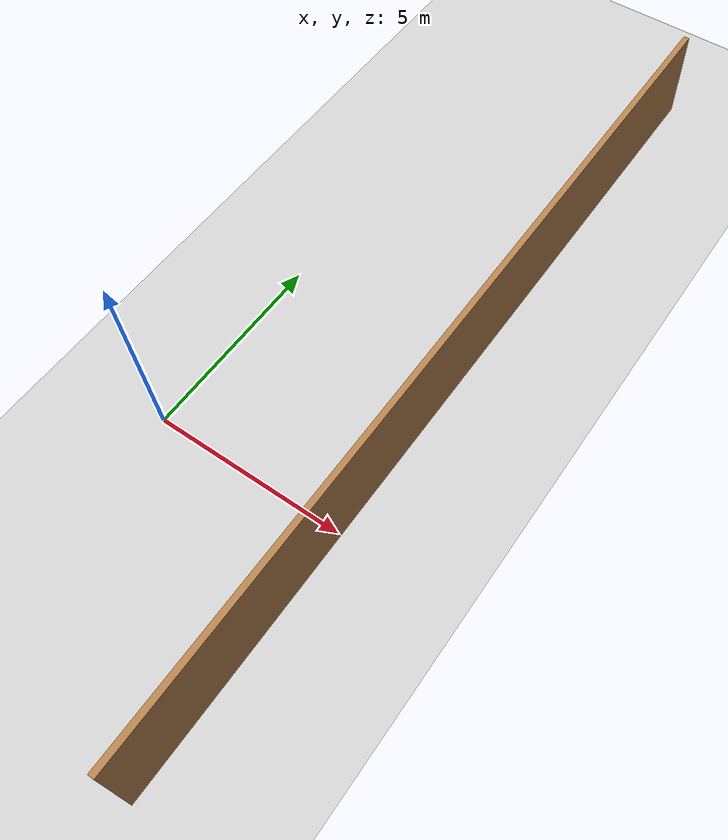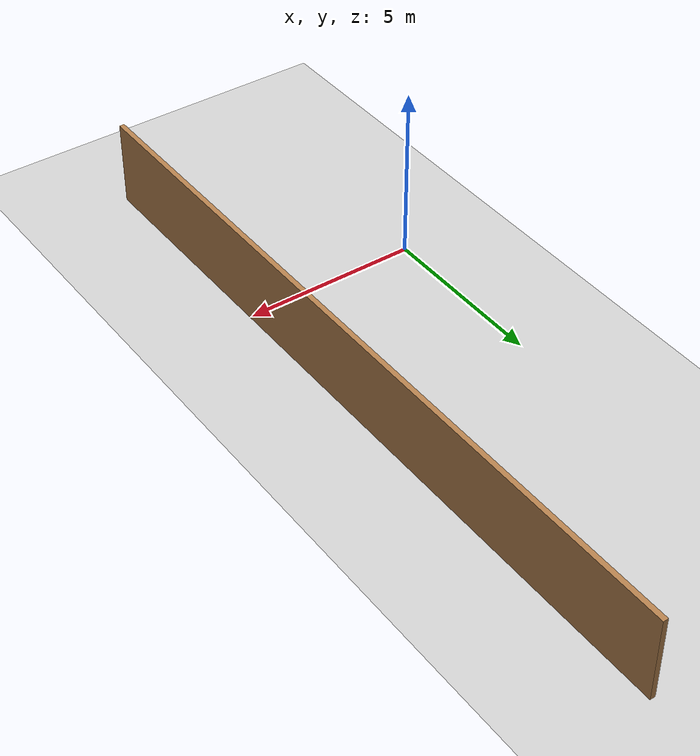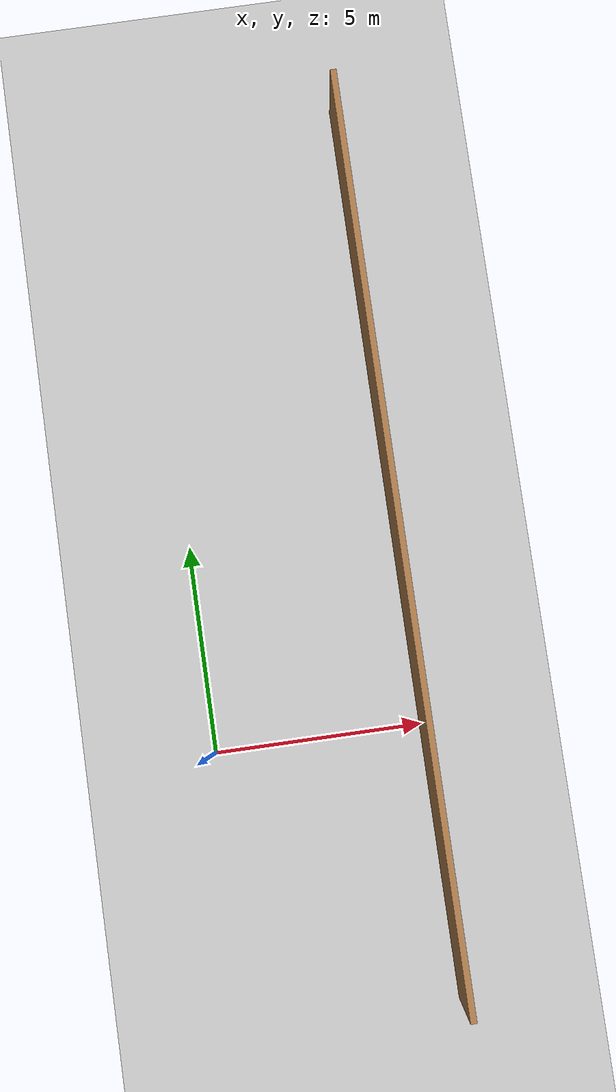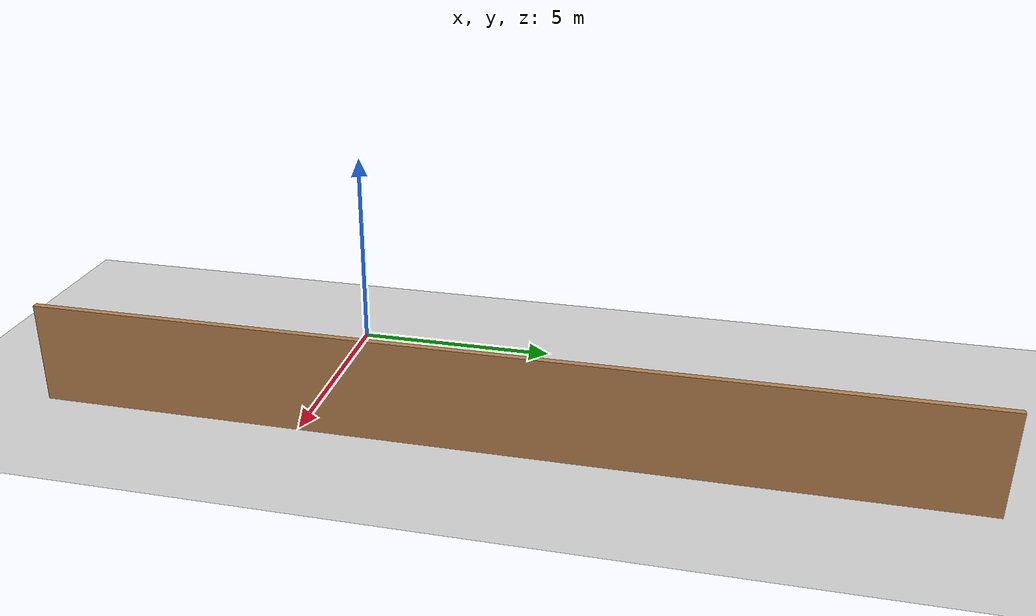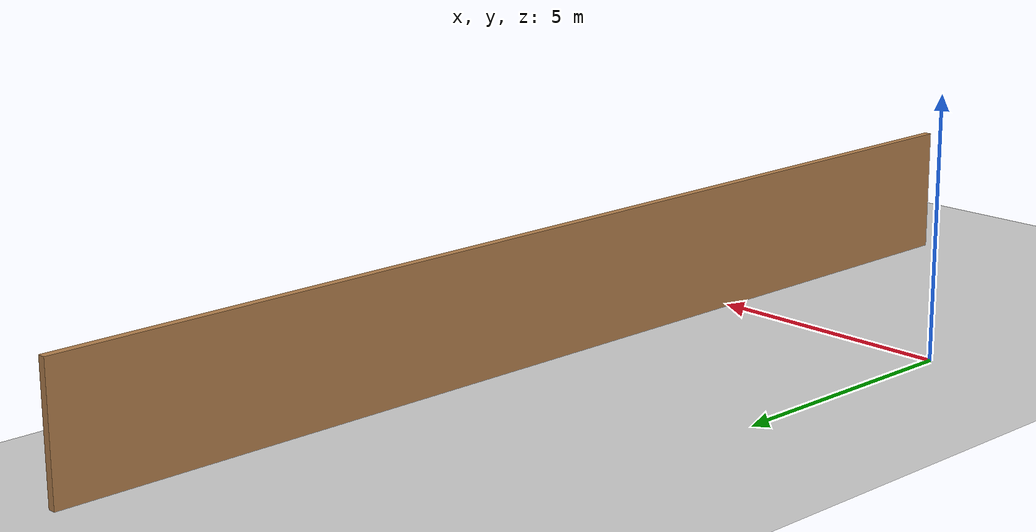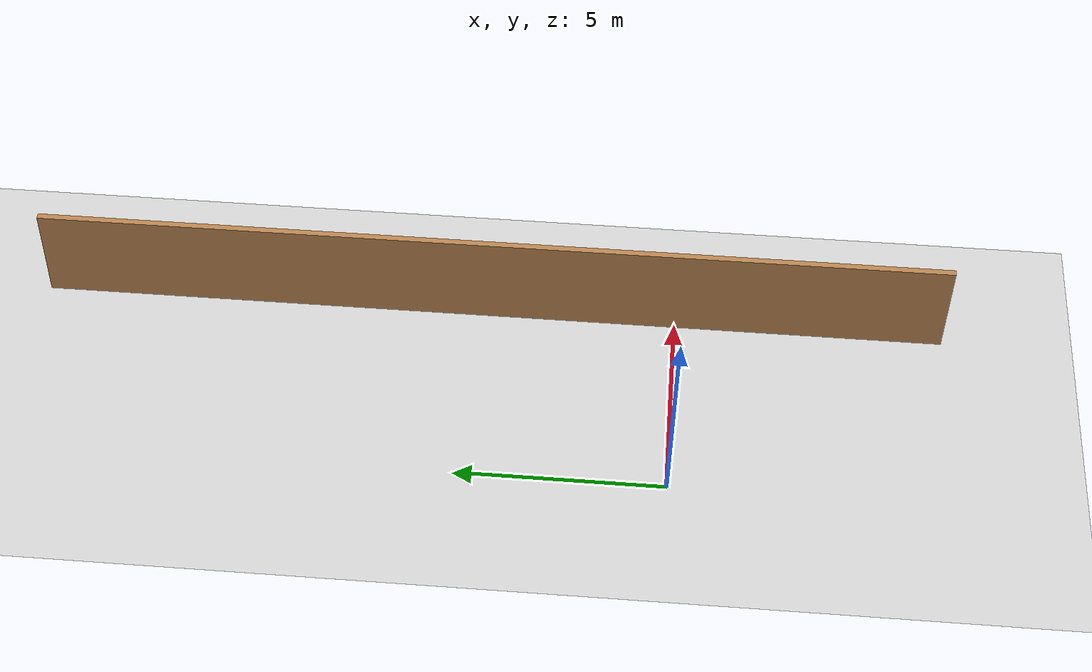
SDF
<sdf version="1.6">
 <world name="default">
  <model name="ground_plane">
   <static>1</static>
   <link name="link">
    <collision name="collision">
     <geometry><plane><normal>0 0 1</normal><size>100 100</size></plane></geometry>
     <surface>
      <contact><collide_bitmask>65535</collide_bitmask></contact>
      <friction><ode><mu>100</mu><mu2>50</mu2></ode></friction>
     </surface>
    </collision>
    <visual name="visual">
     <cast_shadows>0</cast_shadows>
     <geometry><plane><normal>0 0 1</normal><size>100 100</size></plane></geometry>
     <material>
      <script><uri>file://media/materials/scripts/gazebo.material</uri><name>Gazebo/Grey</name></script>
     </material>
    </visual>
   </link>
  </model>
  <model name="over22mWall_clone">
   <pose>5.01448 4.50679 0 0 -0 0</pose>
   <link name="Wall_2">
    <collision name="Wall_2_Collision">
     <geometry><box><size>22 0.15 2.5</size></box></geometry>
     <pose>0 0 1.25 0 -0 0</pose>
    </collision>
    <visual name="Wall_2_Visual">
     <pose>0 0 1.25 0 -0 0</pose>
     <geometry><box><size>22 0.15 2.5</size></box></geometry>
     <material>
      <script><uri>file://media/materials/scripts/gazebo.material</uri><name>Gazebo/Wood</name></script>
      <ambient>1 1 1 1</ambient>
     </material>
     <meta><layer>0</layer></meta>
    </visual>
    <pose>0 0 0 0 -0 -1.5708</pose>
   </link>
   <static>1</static>
  </model>
 </world>
</sdf>
